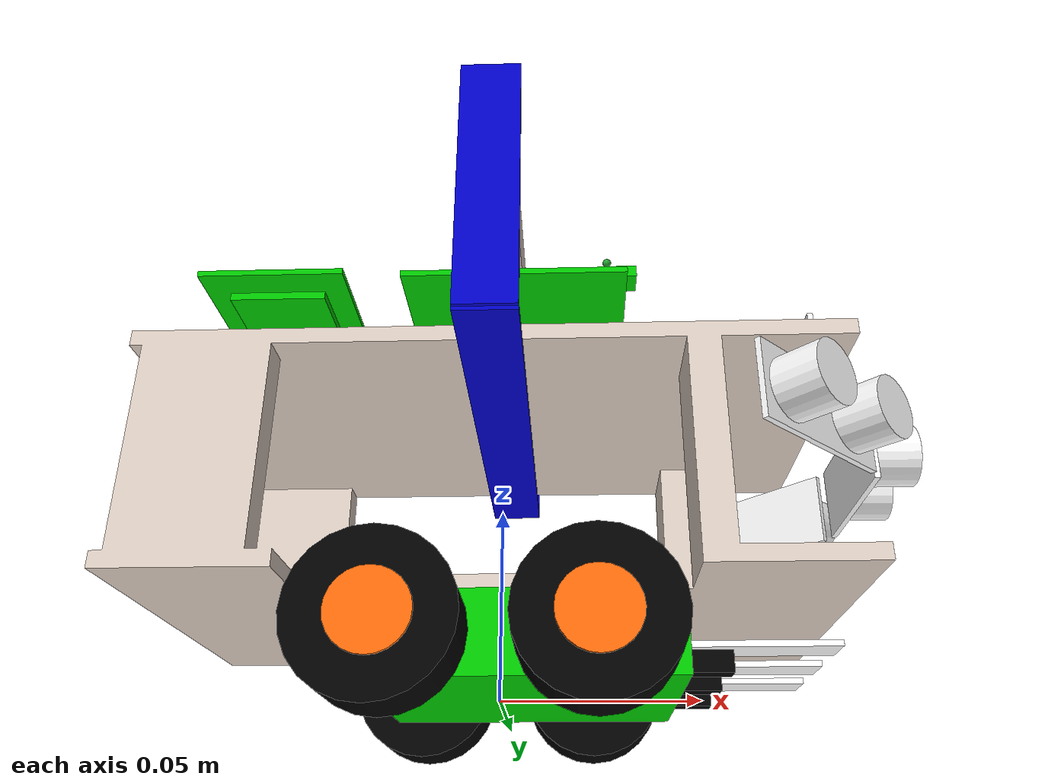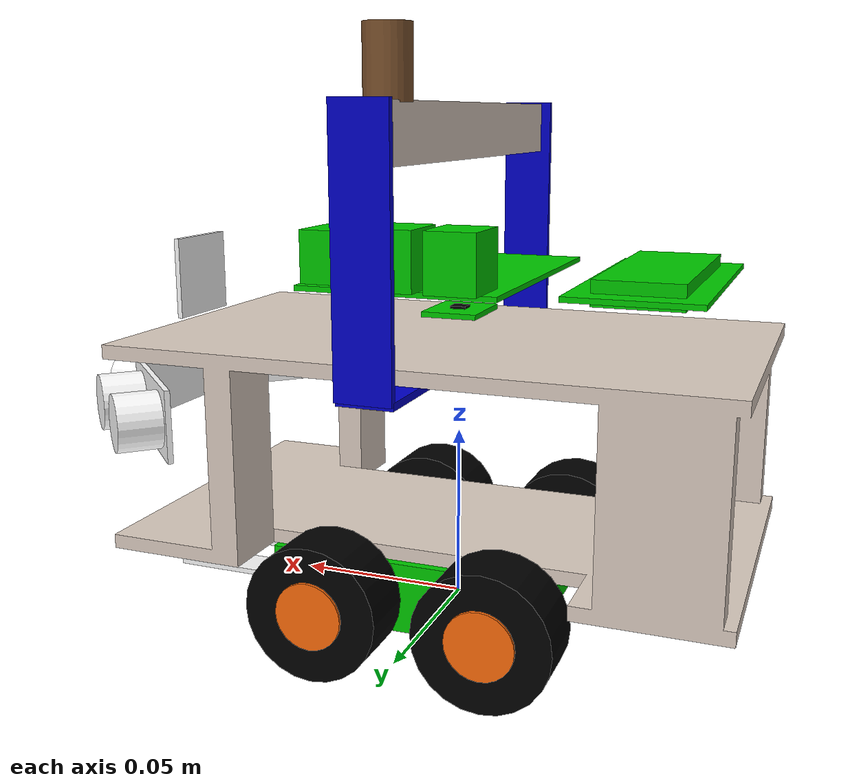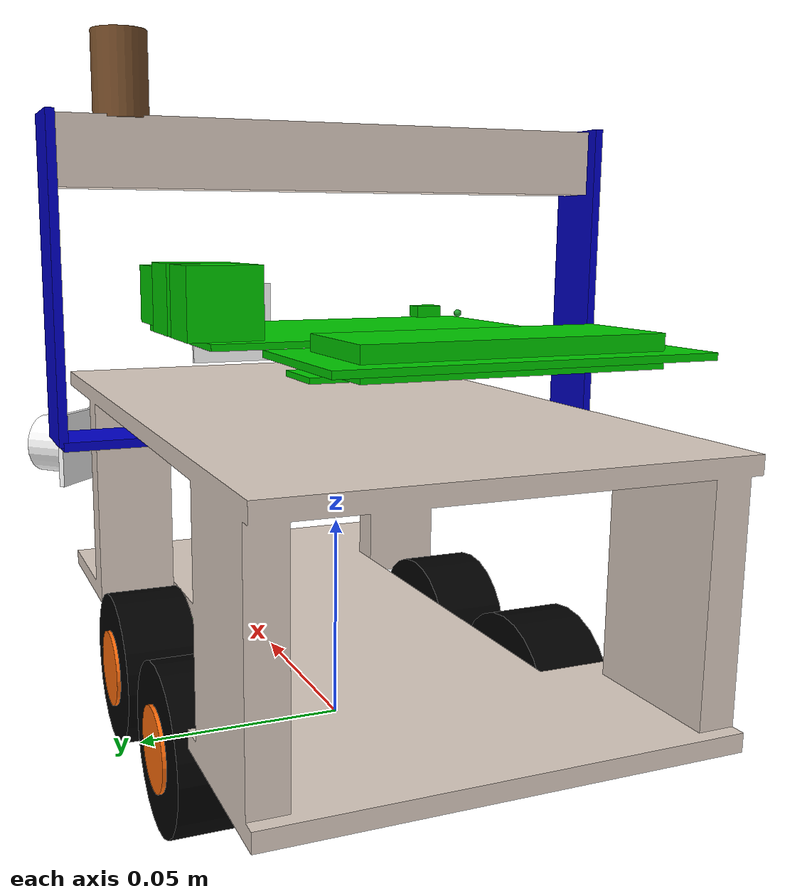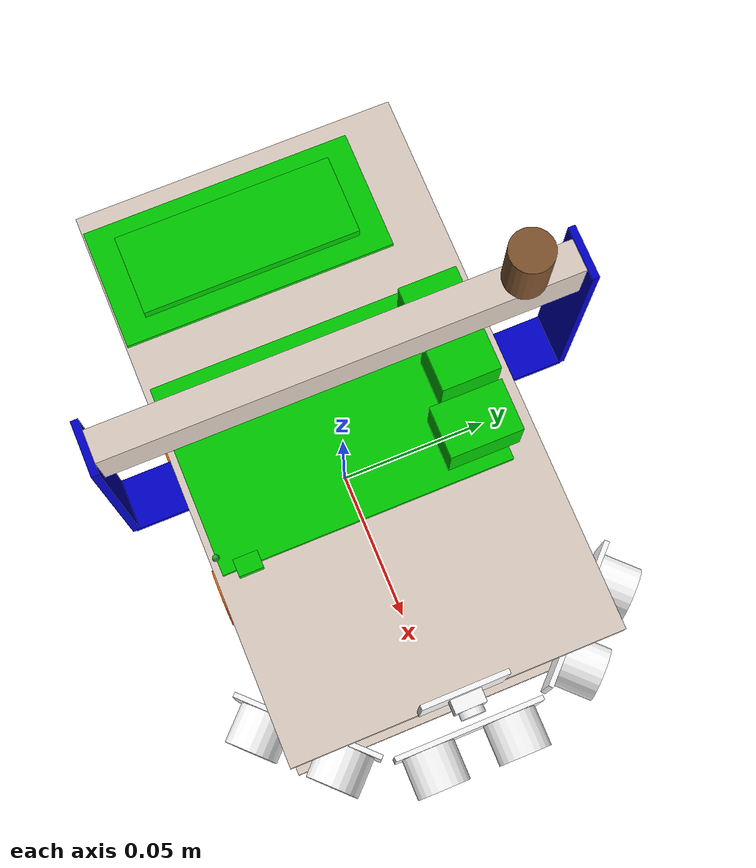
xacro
<?xml version='1.0'?>

<robot name="Pet Mk.IV" xmlns:xacro="http://www.ros.org/wiki/xacro">

  <xacro:include filename="$(find pet_mk_iv_description)/urdf/materials.xacro"/>
  <xacro:include filename="$(find pet_mk_iv_description)/urdf/pet_mk_iv_gazebo.urdf.xacro" />
  <xacro:include filename="$(find pet_mk_iv_description)/urdf/sensor_hc_sr04_sonarRange.urdf.xacro"/>
  <xacro:include filename="$(find pet_mk_iv_description)/urdf/sensor_RPi_cameraV2.urdf.xacro"/>
  <xacro:include filename="$(find pet_mk_iv_description)/urdf/sensor_mpu6050_imu.urdf.xacro"/>
  <xacro:include filename="$(find pet_mk_iv_description)/urdf/sensor_fc_123_lineDetector.urdf.xacro"/>
  <xacro:include filename="$(find pet_mk_iv_description)/urdf/chassis_zumo.urdf.xacro"/>
  <xacro:include filename="$(find pet_mk_iv_description)/urdf/wheel.urdf.xacro"/>
  <xacro:include filename="$(find pet_mk_iv_description)/urdf/visual_raspberryPi3B_sbc.urdf.xacro"/>
  <xacro:include filename="$(find pet_mk_iv_description)/urdf/visual_LCD1602.urdf.xacro"/>

  <xacro:property name="robot_weight"        value="0.9"/>    <!-- unit kg  -->
  <xacro:property name="sonar_center_height" value="0.060"/>  <!-- unit m  -->
  <xacro:property name="PI" value="3.14159265359"/>           <!-- unit n/a  -->

  <xacro:property name="chassis_height"  value="0.020"/>      <!-- unit m  -->

  <xacro:property name="body_length" value="0.175"/>    <!-- unit m  -->
  <xacro:property name="body_width" value="0.100"/>     <!-- unit m  -->
  <xacro:property name="body_height" value="0.060"/>     <!-- unit m  -->

  <xacro:property name="body_thicknes_upper_deck" value="0.020"/>  <!-- Only used by simplified collision box-->
  <xacro:property name="body_height_upper_deck"   value="0.060"/>  <!-- Only used by simplified collision box-->
  <xacro:property name="body_thicknes_lower_deck" value="0.030"/>  <!-- Only used by simplified collision box-->
  <xacro:property name="body_height_lower_deck"   value="${body_thicknes_lower_deck/2}"/> <!-- Only used by simplified collision box-->

  <xacro:property name="wheel_diameter" value="0.038"/>        <!-- unit m -->
  <xacro:property name="wheel_width" value="0.018"/>           <!-- unit m -->
  <xacro:property name="wheel_axis_distance" value="0.048"/>   <!-- unit m  -->
  <xacro:property name="wheel_axis_width" value="0.085"/>      <!-- unit m  -->

  <!--
    Robot Chassis (Pololu Zumo in a very simplified design)
    'base_link' is the 'groud zero' of the rover/robot.
    Sometimes called 'base_footprint', but we call it 'base_link'
  -->
  <xacro:chassis_zumo name="base_link" />

  <!-- Robot Inertials: Creates link + joint vs."base_link" -->
  <link name='base_link_inertial'>
    <pose>0 0 0 0 0 0</pose>
    <inertial>
      <mass value="${robot_weight}"/>
      <origin xyz="0.0 0 0.0" rpy=" 0 0 0"/>
      <inertia
          ixx="0.007"
          ixy="-2.0E-08"
          ixz="0.000014"
          iyy="0.0007"
          iyz="4.6E-09"
          izz="0.0011"/>
    </inertial>
  </link>

  <joint name='base_link_inertial_joint' type="fixed">
    <axis xyz="1 0 0"/>
    <origin xyz="0.000 0.000 0.060" rpy="0 0 0" />
    <parent link="base_link"/>
    <child link="base_link_inertial"/>
  </joint>

  <!--
    Add wheels to the robot chassis (Pololu Zumo in a very simplified design)
    Call WHEEL MACRO: Creates link + joint vs."base_link"
  -->
  <xacro:wheel  wheel_prefix="front_left"
                origin_xyz="${wheel_axis_distance/2}  ${wheel_axis_width/2} ${chassis_height/2}"
                origin_rpy="0 0 0"/>
  <xacro:wheel   wheel_prefix="front_right"
                origin_xyz="${wheel_axis_distance/2} -${wheel_axis_width/2} ${chassis_height/2}"
                origin_rpy="0 0 0"/>
  <xacro:wheel  wheel_prefix="rear_left"
                origin_xyz="-${wheel_axis_distance/2}  ${wheel_axis_width/2} ${chassis_height/2}"
                origin_rpy="0 0 0"/>
  <xacro:wheel  wheel_prefix="rear_right"
                origin_xyz="-${wheel_axis_distance/2} -${wheel_axis_width/2} ${chassis_height/2}"
                origin_rpy="0 0 0"/>

  <!--
    Robot Body.
    1) Visual = mesh + box (as grip)
    2) Collsion = uppe_deck + lower_deck boxes
  -->
  <link name='body_base_link'>
    <pose>0 0 0 0 0 0</pose>

    <visual name='Pet_Mk_IV_body_visual'>
      <origin xyz="0 0 0" rpy="${PI/2} 0 ${PI}"/>
      <geometry>'
        <mesh
          filename="package://pet_mk_iv_description/mesh/pet_mk_iv_body.stl"
          scale="0.001 0.001 0.001"
        />  <!-- Scale .stl file from mm to m -->
      </geometry>
      <material name='brown'/>   <!-- Color in RViz -->
    </visual>

    <visual name='Pet_Mk_IV_body_grip_rightBracket_link_visual'>
      <origin xyz="0 ${+0.132/2} ${body_height-0.004-0.002+0.070/2}" rpy=" 0 0 0"/>
      <geometry>
        <box size= "0.015 0.002 0.070"/>    <!-- Right vertical bracket holding grip -->
      </geometry>
      <material name="blue"/>
    </visual>

    <visual name='Pet_Mk_IV_body_grip_leftBracket_link_visual'>
      <origin xyz="0 ${-0.132/2} ${body_height-0.004-0.002+0.070/2}" rpy=" 0 0 0"/>
      <geometry>
        <box size= "0.015 0.002 0.070"/>    <!-- Left vertical bracket holding grip -->
      </geometry>
      <material name="blue"/>
    </visual>

    <visual name='Pet_Mk_IV_body_grip_bracket_link_visual'>
      <origin xyz="0 0 ${body_height-0.004-0.002}" rpy=" 0 0 0"/>
      <geometry>
        <box size= "0.015 0.132 0.002"/>    <!-- Horizontal bracket -->
      </geometry>
      <material name="blue"/>
    </visual>

    <visual name='Pet_Mk_IV_body_grip_horisontal_link_visual'>
      <origin xyz="0 0 ${body_height+0.056}" rpy=" 0 0 0"/>
      <geometry>
        <box size= "0.009 0.132 0.015"/>    <!-- Horizontal beam/grip -->
      </geometry>
      <material name="brown"/>
    </visual>

    <visual name='Pet_Mk_IV_body_lightBeacon_link_visual'>
      <origin xyz="0 ${body_width/2} ${body_height+0.072}" rpy=" 0 0 0"/>
      <geometry>
        <cylinder radius="0.006" length="0.018"/>    <!-- LightBeacon -->
      </geometry>
      <material name="LED material">
        <ambient>0 0 0 1</ambient>
        <diffuse>0 0 0 1</diffuse>
        <specular>0 0 0 0</specular>
        <emissive>0 1 0 1</emissive>
      </material>
    </visual>

    <collision name='Pet_Mk_IV_body_grip_collision'>
      <origin xyz="0 0 ${body_height/2+0.055}" rpy=" 0 0 0"/>
      <geometry>
        <box size= "0.015 0.135 0.070"/>  <!-- Cube of Robot Grip -->
      </geometry>
    </collision>

    <collision name='Pet_Mk_IV_body_upper_deck_collision'>
      <origin xyz="0 0 ${body_height_upper_deck}" rpy=" 0 0 0"/>
      <geometry>
        <box size= "${body_length} ${body_width} ${body_thicknes_upper_deck}"/>
      </geometry>
      <material name="green"/>
    </collision>

    <collision name='Pet_Mk_IV_body_lower_deck_collision'>
      <origin xyz="0 0 ${body_height_lower_deck}" rpy=" 0 0 0"/>
      <geometry>
        <box size= "${body_length} ${body_width} ${body_thicknes_lower_deck}"/>
      </geometry>
      <material name="green"/>
    </collision>

  </link>

  <joint name='body_base_link_joint' type="fixed">
    <axis xyz="1 0 0"/>${sonar_center_height}
    <origin xyz="0 0 ${chassis_height}" rpy="0 0 0" />
    <parent link="base_link"/>
    <child link="body_base_link"/>
  </joint>

  <!--
    Call SENSOR MACRO's: Creates link + joint vs."base_link" + Connect to Gazebo-plugin
  -->
  <xacro:RPi_camera sensor_prefix="front"
                 topic="camera_front"
                 origin_xyz="${body_length/2+0.005} 0.0 0.095"
                 origin_rpy="0 0 0"/>

  <xacro:sensor_hc_sr04_sonarRange sensor_prefix="front_middle"
                 topic="range_sensor/middle"
                 origin_xyz="0.095 0.0 ${sonar_center_height}"
                 origin_rpy="0 0 0"/>

  <xacro:sensor_hc_sr04_sonarRange sensor_prefix="front_left"
                 topic="range_sensor/left"
                 origin_xyz="0.077 0.042 ${sonar_center_height}"
                 origin_rpy="0 0 ${PI/4}"/>   <!-- +PI/4 = +45'deg -->

  <xacro:sensor_hc_sr04_sonarRange sensor_prefix="front_right"
                 topic="range_sensor/right"
                 origin_xyz="0.077 -0.042 ${sonar_center_height}"
                 origin_rpy="0 0 -${PI/4}"/>  <!-- -PI/4 = -45'deg -->

  <xacro:sensor_mpu6050_imu sensor_name="imu"
                  topic="imu"
                  origin_xyz="0.000 0.000 0.085"
                  origin_rpy="0 0 0"/>

  <xacro:sensor_fc_123_lineDetector sensor_prefix="right"
                  topic="line_sensor/right"
                  origin_xyz="0.050 -0.022 0.002"
                  origin_rpy="0 0 0"/>

  <xacro:sensor_fc_123_lineDetector sensor_prefix="mid"
                  topic="line_sensor/middle"
                  origin_xyz="0.050 0.000 0.002"
                  origin_rpy="0 0 0"/>

  <xacro:sensor_fc_123_lineDetector sensor_prefix="left"
                  topic="line_sensor/left"
                  origin_xyz="0.050 0.022 0.002"
                  origin_rpy="0 0 0"/>

  <!--
    Call COSMETIC BODY PART MACRO's: Creates link + joint vs."base_link"
  -->
  <xacro:visual_raspberryPi3B_sbc name="raspiKull4"
                origin_xyz="0.005 -0.005 0.095"
                origin_rpy="0 0 ${PI/2}"/>

  <!--
    Call COSMETIC BODY PART MACRO's: Creates link + joint vs."base_link"
  -->
  <xacro:visual_LCD1602 display_name="display_LCD1602"
                origin_xyz="-0.055 -0.009 0.095"
                origin_rpy="0 0 0"/>
</robot>

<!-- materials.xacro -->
<robot xmlns:xacro="http://www.ros.org/wiki/xacro">

  <material name="black">
    <color rgba="0.0 0.0 0.0 1.0"/>
  </material>

  <material name="blue">
    <color rgba="0.0 0.0 0.8 1.0"/>
  </material>

  <material name="green">
    <color rgba="0.0 0.8 0.0 1.0"/>
  </material>

  <material name="grey">
    <color rgba="0.2 0.2 0.2 1.0"/>
  </material>

  <material name="orange">
    <color rgba="${255/255} ${108/255} ${10/255} 1.0"/>
  </material>

  <material name="brown">
    <color rgba="${222/255} ${207/255} ${195/255} 1.0"/>
  </material>

  <material name="red">
    <color rgba="0.8 0.0 0.0 1.0"/>
  </material>

  <material name="white">
    <color rgba="1.0 1.0 1.0 1.0"/>
  </material>

</robot>

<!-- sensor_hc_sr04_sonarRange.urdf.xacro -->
<robot xmlns:xacro="http://www.ros.org/wiki/xacro">
  <xacro:macro name="sensor_hc_sr04_sonarRange" params="sensor_prefix topic origin_xyz origin_rpy">
    <xacro:property name="sonar_array"         value="5"/>           <!-- Array 5x5  -->
    <xacro:property name="sensor_gazebo_color" value="Gazebo/Blue"/>
    <xacro:property name="sensor_rviz_color"   value="white"/>

    <xacro:property name="sonar_cyl_diameter"  value="0.016"/> <!-- x=16mm  -->
    <xacro:property name="sonar_cyl_depth"     value="0.012"/> <!-- y=12mm  -->
    <xacro:property name="sonar_cyl_cen_cen"   value="0.025"/> <!-- Distance 16mm  -->

    <xacro:property name="pcb_thicknes"  value="0.0015"/> <!-- Box x=1.5mm -->
    <xacro:property name="pcb_width"     value="0.045"/>  <!-- Box y=45mm  -->
    <xacro:property name="pcb_hight"     value="0.020"/>  <!-- Box z=20mm  -->

    <link name='${sensor_prefix}_HCSR04_link'>

      <visual name='${sensor_prefix}_HCSR04_visual_pcb'>
        <origin xyz="${-pcb_thicknes/2} 0.00 0.00" rpy="0 0 0"/>
        <geometry>
          <box size="${pcb_thicknes} ${pcb_width} ${pcb_hight}"/>
        </geometry>
        <material name="${sensor_rviz_color}"/>
      </visual>

      <visual name='${sensor_prefix}_HCSR04_visual_Ultrasonic_Receiver'>
        <origin xyz="${sonar_cyl_depth/2} -${sonar_cyl_cen_cen/2} 0.00" rpy="0 1.5707 0"/>
        <geometry>
          <cylinder radius="${sonar_cyl_diameter/2}" length="${sonar_cyl_depth}"/>
        </geometry>
        <material name="${sensor_rviz_color}"/>
      </visual>

      <visual name='${sensor_prefix}_HCSR04_visual_Ultrasonic_Transmitter'>
        <origin xyz="${sonar_cyl_depth/2} ${sonar_cyl_cen_cen/2} 0.00" rpy="0 1.5707 0"/>
        <geometry>
          <cylinder radius="${sonar_cyl_diameter/2}" length="${sonar_cyl_depth}"/>
        </geometry>
        <material name="${sensor_rviz_color}"/>
      </visual>

      <inertial>
        <mass value="1e-5" />
        <origin xyz="0 0 0" rpy="0 0 0"/>
        <inertia ixx="1e-6" ixy="0" ixz="0" iyy="1e-6" iyz="0" izz="1e-6" />
      </inertial>
    </link>

    <joint name='${sensor_prefix}_HCSR04_joint' type="fixed">
      <axis xyz="0 1 0" />
      <origin xyz="${origin_xyz}" rpy="${origin_rpy}" />
      <parent link="base_link"/>
      <child link="${sensor_prefix}_HCSR04_link"/>
    </joint>

    <!--
       \todo Gazebo-simulator plugin-description...=> Move to a separate Gazebo package?
    -->
    <gazebo reference="${sensor_prefix}_HCSR04_link">
      <sensor type="ray" name="TeraRanger">
        <pose>0 0 0 0 0 0</pose>
        <visualize>true</visualize>
        <update_rate>10</update_rate>
        <ray>
          <scan>
              <horizontal>
                <samples>${sonar_array}</samples>
                <resolution>1</resolution>
                <min_angle>-0.14835</min_angle>
                <max_angle>0.14835</max_angle>
              </horizontal>
              <vertical>
                <samples>${sonar_array}</samples>
                <resolution>1</resolution>
                <min_angle>-0.14835</min_angle>
                <max_angle>0.14835</max_angle>
              </vertical>
          </scan>
          <range>
              <min>0.01</min>
              <max>2</max>
              <resolution>0.02</resolution>
          </range>
        </ray>

        <plugin filename="libgazebo_ros_range.so" name="gazebo_ros_range">
          <gaussianNoise>0.005</gaussianNoise>
          <alwaysOn>true</alwaysOn>
          <updateRate>10</updateRate>
          <topicName>${topic}</topicName>
          <frameName>${sensor_prefix}_HCSR04_link</frameName>
          <radiation>ULTRASONIC</radiation>
          <fov>0.2967</fov>  <!--Sensor field of view(fov).  -->
        </plugin>
      </sensor>
    </gazebo>

    <gazebo reference="${sensor_prefix}_HCSR04_link">
      <material>${sensor_gazebo_color}</material>
    </gazebo>

  </xacro:macro>
</robot>

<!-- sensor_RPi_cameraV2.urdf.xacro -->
<robot xmlns:xacro="http://www.ros.org/wiki/xacro">
  <xacro:macro name="RPi_camera" params="sensor_prefix topic origin_xyz origin_rpy">
    <xacro:property name="sensor_gazebo_color" value="Gazebo/DarkYellow"/>
    <xacro:property name="sensor_rviz_color"   value="white"/>

    <xacro:property name="camera_cyl_diameter"  value="0.007"/> <!-- D=7mm  -->
    <xacro:property name="camera_cyl_depth"     value="0.006"/> <!-- L=6mm  -->
    <xacro:property name="camera_cyl_cen_pcb"   value="0.003"/> <!-- Offset=3mm  -->

    <xacro:property name="camera_house_thicknes"  value="0.004"/>  <!-- Box x=4mm -->
    <xacro:property name="camera_house_width"     value="0.009"/>  <!-- Box y=9mm -->
    <xacro:property name="camera_house_height"    value="0.008"/>  <!-- Box z=8mm -->

    <xacro:property name="pcb_thicknes"  value="0.0015"/> <!-- Box x=1.5mm -->
    <xacro:property name="pcb_width"     value="0.025"/>  <!-- Box y=25mm  -->
    <xacro:property name="pcb_height"    value="0.024"/>  <!-- Box z=24mm  -->

    <link name='${sensor_prefix}_camera_link'>
     <visual name='${sensor_prefix}_camera_visual_pcb'>
        <origin xyz="${-pcb_thicknes/2-camera_cyl_depth} 0.00 ${-camera_cyl_cen_pcb}" rpy="0 0 0"/>
        <geometry>
          <box size= "${pcb_thicknes} ${pcb_width} ${pcb_height}"/>
        </geometry>
        <material name="${sensor_rviz_color}"/>
      </visual>

      <visual name='${sensor_prefix}_camera_visual_house'>
        <origin xyz="${-camera_house_thicknes/2-0.002} 0.00 0.00" rpy="0 0 0"/>
        <geometry>
          <box size= "${camera_house_thicknes} ${camera_house_width} ${camera_house_height}"/>
        </geometry>
        <material name="${sensor_rviz_color}"/>
      </visual>

      <visual name='${sensor_prefix}_camera_visual_lens'>
        <origin xyz="${-camera_cyl_depth/2} 0.00 0.00" rpy="0 1.5707 0"/>
        <geometry>
          <cylinder radius="${camera_cyl_diameter/2}" length="${camera_cyl_depth}"/>
        </geometry>
        <material name="${sensor_rviz_color}"/>
      </visual>

      <inertial>
        <mass value="1e-5" />
        <origin xyz="0 0 0" rpy="0 0 0"/>
        <inertia ixx="1e-6" ixy="0" ixz="0" iyy="1e-6" iyz="0" izz="1e-6" />
      </inertial>
    </link>

    <joint name='${sensor_prefix}_camera_joint' type="fixed">
      <axis xyz="0 1 0" />
      <origin xyz="${origin_xyz}" rpy="${origin_rpy}" />
      <parent link="base_link"/>
      <child link="${sensor_prefix}_camera_link"/>
    </joint>

    <!--
       \todo Gazebo-simulator plugin-description...=> Move to a separate Gazebo package?
    -->
    <gazebo reference="${sensor_prefix}_camera_link">
      <sensor type="camera" name='${sensor_prefix}_camera_sensor'>
        <update_rate>30.0</update_rate>
        <camera name="${sensor_prefix}_camera">
          <horizontal_fov>1.3962634</horizontal_fov>
          <image>
            <width>800</width>
            <height>800</height>
            <format>R8G8B8</format>
          </image>
          <clip>
            <near>0.02</near>
            <far>300</far>
          </clip>
          <noise>
            <type>gaussian</type>
            <mean>0.0</mean>
            <stddev>0.007</stddev>
          </noise>
        </camera>
        <plugin name="camera_controller" filename="libgazebo_ros_camera.so">
          <alwaysOn>true</alwaysOn>
          <updateRate>0.0</updateRate>
          <!--  generates the following rostopics
                /${topic}/camera_info
                /${topic}/image_raw                 -->
          <cameraName>${topic}</cameraName>
          <imageTopicName>image_raw</imageTopicName>
          <cameraInfoTopicName>camera_info</cameraInfoTopicName>
          <frameName>${sensor_prefix}_camera_link</frameName>
          <hackBaseline>0.07</hackBaseline>
          <distortionK1>0.0</distortionK1>
          <distortionK2>0.0</distortionK2>
          <distortionK3>0.0</distortionK3>
          <distortionT1>0.0</distortionT1>
          <distortionT2>0.0</distortionT2>
        </plugin>
      </sensor>
    </gazebo>

    <gazebo reference="${sensor_prefix}_camera_link">
      <material>${sensor_gazebo_color}</material>
    </gazebo>

  </xacro:macro>
</robot>

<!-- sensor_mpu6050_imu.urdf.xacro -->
<robot xmlns:xacro="http://www.ros.org/wiki/xacro">
  <xacro:macro name="sensor_mpu6050_imu" params="sensor_name topic origin_xyz origin_rpy">
    <xacro:property name="sensor_gazebo_color" value="Gazebo/Green"/>
    <xacro:property name="sensor_rviz_color"   value="green"/>

    <xacro:property name="pcb_length"    value="0.016"/>  <!-- Box x=16mm  -->
    <xacro:property name="pcb_width"     value="0.020"/>  <!-- Box y=20mm  -->
    <xacro:property name="pcb_thicknes"  value="0.0015"/> <!-- Box z=1.5mm -->

    <link name="${sensor_name}_link">

      <visual name="${sensor_name}_visual_pcb">
        <origin xyz="0.00 0.00 ${pcb_thicknes/2}" rpy="0 0 0"/>
        <geometry>
          <box size="${pcb_length} ${pcb_width} ${pcb_thicknes}"/>
        </geometry>
        <material name="${sensor_rviz_color}"/>
      </visual>

      <visual name="${sensor_name}_visual_chip">
        <origin xyz="0.00 0.00 ${pcb_thicknes}" rpy="0 0 0"/>
        <geometry>
          <box size="0.0045 0.0045 0.0015"/>  <!-- Visual chip size on top of pcb-->
        </geometry>
        <material name="black"/>
      </visual>

      <inertial>
        <mass value="1e-5" />
        <origin xyz="0 0 0" rpy="0 0 0"/>
        <inertia ixx="1e-6" ixy="0" ixz="0" iyy="1e-6" iyz="0" izz="1e-6" />
      </inertial>
    </link>

    <joint name="${sensor_name}_joint" type="fixed">
      <axis xyz="0 1 0" />
      <origin xyz="${origin_xyz}" rpy="${origin_rpy}" />
      <parent link="base_link"/>
      <child link="${sensor_name}_link"/>
    </joint>

    <gazebo reference="${sensor_name}_link">
      <material>${sensor_gazebo_color}</material>
    </gazebo>

    <!--
       \todo Gazebo-simulator plugin-description...=> Move to a separate Gazebo package?
    -->
    <gazebo reference="${sensor_name}_link">
      <gravity>true</gravity>
      <sensor name="imu_sensor" type="imu">
        <always_on>true</always_on>
        <update_rate>100</update_rate>
        <visualize>true</visualize>
        <topic>__default_topic__</topic>
        <plugin filename="libgazebo_ros_imu_sensor.so" name="imu_plugin">
          <topicName>${topic}</topicName>
          <bodyName>${sensor_name}_link</bodyName>
          <updateRateHZ>10.0</updateRateHZ>
          <gaussianNoise>0.0</gaussianNoise>
          <xyzOffset>0 0 0</xyzOffset>
          <rpyOffset>0 0 0</rpyOffset>
          <frameName>${sensor_name}_link</frameName>
          <initialOrientationAsReference>false</initialOrientationAsReference>
        </plugin>
        <pose>0 0 0 0 0 0</pose>
      </sensor>
    </gazebo>

  </xacro:macro>
</robot>

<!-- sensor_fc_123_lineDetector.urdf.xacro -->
<robot xmlns:xacro="http://www.ros.org/wiki/xacro">
  <xacro:macro name="sensor_fc_123_lineDetector" params="sensor_prefix topic origin_xyz origin_rpy">
    <xacro:property name="sensor_gazebo_color" value="Gazebo/DarkYellow"/>
    <xacro:property name="sensor_rviz_color"   value="white"/>
    <xacro:property name="PI" value="3.14159265359"/>   <!-- unit n/a  -->

    <xacro:property name="pcb2sensor_offset_x"  value="0.012"/> <!-- D=12mm  -->
    <xacro:property name="pcb2sensor_offset_y"  value="0.000"/> <!-- D=0.0mm  -->
    <xacro:property name="pcb2sensor_offset_z"  value="0.006"/> <!-- D=6mm  -->

    <xacro:property name="pcb_length"   value="0.0350"/> <!-- Box x=35mm  -->
    <xacro:property name="pcb_width"    value="0.0100"/> <!-- Box y=10mm  -->
    <xacro:property name="pcb_thicknes" value="0.0015"/> <!-- Box z=1.5mm -->

    <link name='${sensor_prefix}_line_follower_link'>
      <visual name='${sensor_prefix}_visual_pcb'>
        <origin xyz="${pcb2sensor_offset_x} ${pcb2sensor_offset_y} ${pcb2sensor_offset_z}" rpy="0 0 0"/>
        <geometry>
          <box size="${pcb_length} ${pcb_width} ${pcb_thicknes}"/>
        </geometry>
        <material name='${sensor_rviz_color}'/>
      </visual>

      <visual name='${sensor_prefix}_visual_sensor'>
        <origin xyz="0.000 0.000 0.003" rpy="0 0 0"/>
        <geometry>
          <box size="0.010 0.005 0.006"/>  <!-- CTRT5000 Sensor Size = 10x5x6 mm -->
        </geometry>
        <material name="black"/>
      </visual>

      <inertial>
        <mass value="1e-5" />
        <origin xyz="0 0 0" rpy="0 0 0"/>
        <inertia ixx="1e-6" ixy="0" ixz="0" iyy="1e-6" iyz="0" izz="1e-6" />
      </inertial>
    </link>

    <joint name='${sensor_prefix}_line_follower_joint' type="fixed">
      <axis xyz="0 1 0" />
      <origin xyz="${origin_xyz}" rpy="${origin_rpy}" />
      <parent link="base_link"/>
      <child  link="${sensor_prefix}_line_follower_link"/>
    </joint>

    <link name='${sensor_prefix}_line_follower_camera_link'>
      <!-- Empty link -> Attach to camera. Needed to be able to rotate the camera downwards.
            So that sensor/pcb and the sensor/camera could have different rotations. -->
    </link>

    <joint name='${sensor_prefix}_line_follower_camera_joint' type="fixed">
      <axis xyz="0 1 0" />
      <origin xyz="0.0 0.0 0.0" rpy="0.0 ${PI/2} 0.0"/> <!-- Rotate camera downwards -->
      <parent link="${sensor_prefix}_line_follower_link"/>
      <child  link="${sensor_prefix}_line_follower_camera_link"/>
    </joint>

    <!--
       \todo Gazebo-simulator plugin-description...=> Move to a separate Gazebo package?
    -->
    <gazebo reference="${sensor_prefix}_line_follower_camera_link">
      <sensor type="camera" name="${sensor_prefix}_line_follower_sensor">
        <update_rate>30.0</update_rate>
        <camera name="${sensor_prefix}_line_follower_camera">
          <horizontal_fov>1.3962634</horizontal_fov>
          <image>
            <!-- Single pixel gray-scale sensor -->
            <width>5</width>
            <height>5</height>
            <format>L8</format>
          </image>
          <!-- Range 5mm=>30mm -->
          <clip>
            <near>0.005</near>
            <far>0.030</far>
          </clip>
          <noise>
            <type>gaussian</type>
            <mean>0.0</mean>
            <stddev>0.007</stddev>
          </noise>
        </camera>
        <plugin name="camera_controller" filename="libgazebo_ros_camera.so">
          <alwaysOn>true</alwaysOn>
          <updateRate>0.0</updateRate>
          <!--
            generates the following rostopics
              /${topic}/camera_info
              /${topic}/image_raw
          -->
          <cameraName>${topic}</cameraName>
          <imageTopicName>image_raw</imageTopicName>
          <cameraInfoTopicName>camera_info</cameraInfoTopicName>
          <frameName>${sensor_prefix}_line_follower_camera_link</frameName>
          <hackBaseline>0.07</hackBaseline>
          <distortionK1>0.0</distortionK1>
          <distortionK2>0.0</distortionK2>
          <distortionK3>0.0</distortionK3>
          <distortionT1>0.0</distortionT1>
          <distortionT2>0.0</distortionT2>
        </plugin>
      </sensor>
    </gazebo>

    <gazebo reference="${sensor_prefix}_camera_link">
      <material>${sensor_gazebo_color}</material>
    </gazebo>

  </xacro:macro>
</robot>

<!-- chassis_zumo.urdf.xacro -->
<robot xmlns:xacro="http://www.ros.org/wiki/xacro">
  <xacro:macro name="chassis_zumo" params="name" >
    <xacro:property name="chassis_length"  value="0.075"/>   <!-- unit m  -->
    <xacro:property name="chassis_width"   value="0.065"/>   <!-- unit m  -->
    <xacro:property name="chassis_height"  value="0.020"/>   <!-- unit m  -->

    <link name='${name}'>
      <pose>0 0 0 0 0 0</pose>

      <visual name='Zumo_Chassis_visual'>
        <origin xyz="0.007 0 ${chassis_height/2}" rpy=" 0 0 0"/>
        <geometry>
          <box size= "${chassis_length} ${chassis_width} ${chassis_height}"/>
        </geometry>
        <material name="green"/>  <!-- Color in RViz -->
      </visual>
      <collision name='Zumo_Chassis_visual_collision'>
        <origin xyz="0.007 0 ${chassis_height/2}" rpy=" 0 0 0"/>
        <geometry>
          <box size= "${chassis_length} ${chassis_width} ${chassis_height}"/>
        </geometry>
      </collision>
    </link>

  </xacro:macro>
</robot>

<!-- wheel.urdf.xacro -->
<robot xmlns:xacro="http://www.ros.org/wiki/xacro">
  <xacro:macro name="wheel" params="wheel_prefix origin_xyz origin_rpy">
  <xacro:property name="PI" value="3.14159265359"/>    <!-- unit n/a  -->
  <xacro:property name="WHEEL_WEIGHT" value="0.02"/>   <!-- unit kg  -->

    <link name="${wheel_prefix}_wheel">
      <visual> <!-- name="${wheel_prefix}_wheel_visual"> -->
        <origin xyz="0 0 0" rpy="0.00 ${PI/2} ${PI/2}"/>
        <geometry>
          <cylinder radius="${wheel_diameter/2}" length="${wheel_width}"/>
        </geometry>
        <material name="black"/>    <!-- Color in RViz -->
      </visual>
      <visual> <!-- name="${wheel_prefix}_wheel_visual_2"> -->
        <origin xyz="0 0 0" rpy="0.00 ${PI/2} ${PI/2}"/>
        <geometry>
          <cylinder radius="${wheel_diameter/4}" length="${wheel_width*1.10}"/>
        </geometry>
        <material name="orange"/>    <!-- Color in RViz -->
      </visual>

      <collision name="${wheel_prefix}_wheel_collision">
        <origin xyz="0 0 0" rpy="0.00 ${PI/2} ${PI/2}"/>
        <geometry>
          <cylinder radius="${wheel_diameter/2}" length="${wheel_width}"/>
        </geometry>
      </collision>

      <inertial>
        <origin xyz="0 0 0" rpy="0.00 ${PI/2} ${PI/2}"/>
        <mass value="${WHEEL_WEIGHT}" />
        <inertia
          ixx="2.40384090487514E-05"
          ixy="9.21491839222917E-12"
          ixz="1.16650464760408E-11"
          iyy="4.21578178329362E-05"
          iyz="2.56744598636029E-11"
          izz="2.40355678533584E-05"/>
      </inertial>
    </link>

    <joint type="continuous" name="${wheel_prefix}_wheel_joint">
      <origin xyz="${origin_xyz}" rpy="${origin_rpy}"/>
      <child link="${wheel_prefix}_wheel"/>
      <parent link="base_link"/>
      <axis xyz="0 1 0" rpy="0 0 0"/>  <!-- Wheel rotate around Y-axis -->
      <limit effort="10000" velocity="1000"/>
      <joint_properties damping="1.0" friction="1.0"/>
    </joint>

    <!--
       \todo Gazebo-simulator rel. description...=> Move to a separate Gazebo package?
    -->
    <gazebo reference="${wheel_prefix}_wheel">
      <material>Gazebo/Grey</material>
    </gazebo>

  </xacro:macro>
</robot>

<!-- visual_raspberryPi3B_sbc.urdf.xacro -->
<robot xmlns:xacro="http://www.ros.org/wiki/xacro">
  <xacro:macro name="visual_raspberryPi3B_sbc" params="name origin_xyz origin_rpy">

    <xacro:property name="sensor_gazebo_color" value="Gazebo/GreenTransparent"/> <!-- "Gazebo/Green" -->
    <xacro:property name="sensor_rviz_color"   value="green"/>

    <xacro:property name="pcb_thicknes"  value="0.0015"/> <!-- Box x=1.5mm -->
    <xacro:property name="pcb_width"     value="0.056"/>  <!-- Box y=56mm  -->
    <xacro:property name="pcb_length"    value="0.085"/>  <!-- Box z=85mm  -->

    <link name="${name}">
      <!-- Insert visual Raspberry PI pcb -->
      <visual>
        <origin xyz="0.00 0.00 ${pcb_thicknes/2}" rpy="0 0 0"/>
        <geometry>
          <box size= "${pcb_length} ${pcb_width} ${pcb_thicknes}"/>
        </geometry>
        <material name="${sensor_rviz_color}"/>
      </visual>

       <!-- Insert visual Raspberry PI USB-socket #1 -->
      <visual>
        <origin xyz="0.038 0.017 ${pcb_thicknes+0.008}" rpy="0 0 0"/>
        <geometry>
          <box size= "0.017 0.014 0.016"/>
        </geometry>
        <material name="${sensor_rviz_color}"/>
      </visual>

      <!-- Insert visual Raspberry PI USB-socket #2 -->
      <visual>
        <origin xyz="0.035 -0.017 ${pcb_thicknes+0.008}" rpy="0 0 0"/>
        <geometry>
          <box size= "0.021 0.015 0.014"/>
        </geometry>
        <material name="${sensor_rviz_color}"/>
      </visual>

      <!-- Insert visual Raspberry PI Ethernet-socket -->
      <visual>
        <origin xyz="0.038 0.000 ${pcb_thicknes+0.008}" rpy="0 0 0"/>
        <geometry>
          <box size= "0.017 0.014 0.016"/>
        </geometry>
        <material name="${sensor_rviz_color}"/>
      </visual>

      <!-- Insert visual Raspberry PI Power-micro-USB-socket -->
      <visual>
        <origin xyz="-0.035 -0.028 ${pcb_thicknes+0.0015}" rpy="0 0 0"/>
        <geometry>
          <box size= "0.007 0.005 0.003"/>
        </geometry>
        <material name="${sensor_rviz_color}"/>
      </visual>

      <!-- Insert visual Raspberry PI Power indicator/LED -->
      <!--
          \todo   Visual LED-powerindicator does not work as expected.
      -->
      <visual name="power_led_visual">
        <origin xyz="-${pcb_length/2} -0.023 ${pcb_thicknes+0.001}" rpy="0 0 0"/>
        <geometry>
          <sphere radius="0.001"/>
        </geometry>
        <material name="LED material">
          <ambient>0 0 0 1</ambient>
          <diffuse>0 0 0 1</diffuse>
          <specular>0 0 0 0</specular>
          <emissive>0 1 0 1</emissive>
        </material>
      </visual>

      <inertial>
        <mass value="1e-5" />
        <origin xyz="0 0 0" rpy="0 0 0"/>
        <inertia ixx="1e-6" ixy="0" ixz="0" iyy="1e-6" iyz="0" izz="1e-6" />
      </inertial>
    </link>

    <joint name="${name}_joint" type="fixed">
      <axis xyz="0 1 0" />
      <origin xyz="${origin_xyz}" rpy="${origin_rpy}" />
      <parent link="base_link"/>
      <child link="${name}"/>
    </joint>

    <gazebo reference="${name}">
      <material>${sensor_gazebo_color}</material>
    </gazebo>

  </xacro:macro>
</robot>

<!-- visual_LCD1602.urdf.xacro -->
<robot xmlns:xacro="http://www.ros.org/wiki/xacro">
  <xacro:macro name="visual_LCD1602" params="display_name origin_xyz origin_rpy">
    <xacro:property name="sensor_gazebo_color" value="Gazebo/GreenTransparent"/> <!-- "Gazebo/Green" -->
    <xacro:property name="sensor_rviz_color"   value="green"/>

    <xacro:property name="pcb_length"    value="0.036"/>  <!-- Box x=36mm  -->
    <xacro:property name="pcb_width"     value="0.080"/>  <!-- Box y=80mm  -->
    <xacro:property name="pcb_thicknes"  value="0.0015"/> <!-- Box z=1.5mm -->

    <link name="${display_name}_link">
      <!-- Insert visual pcb vor the LCD1602-display -->
      <visual name="${display_name}_visual_pcb">
        <origin xyz="0.00 0.00 ${pcb_thicknes/2}" rpy="0 0 0"/>
        <geometry>
          <box size="${pcb_length} ${pcb_width} ${pcb_thicknes}"/>
        </geometry>
        <material name="${sensor_rviz_color}"/>
      </visual>

      <!-- Insert visual LCD-display on top of pcb -->
      <visual name="${display_name}_visual_chip">
        <origin xyz="0.00 0.00 ${pcb_thicknes}" rpy="0 0 0"/>
        <geometry>
          <box size="0.024 0.0645 0.007"/>
        </geometry>
        <material name="${sensor_rviz_color}"/>
      </visual>

      <inertial>
        <mass value="1e-5" />
        <origin xyz="0 0 0" rpy="0 0 0"/>
        <inertia ixx="1e-6" ixy="0" ixz="0" iyy="1e-6" iyz="0" izz="1e-6" />
      </inertial>
    </link>

    <joint name="${display_name}_joint" type="fixed">
      <axis xyz="0 1 0" />
      <origin xyz="${origin_xyz}" rpy="${origin_rpy}" />
      <parent link="base_link"/>
      <child link="${display_name}_link"/>
    </joint>

    <gazebo reference="${display_name}_link">
      <material>${sensor_gazebo_color}</material>
    </gazebo>

  </xacro:macro>
</robot>
